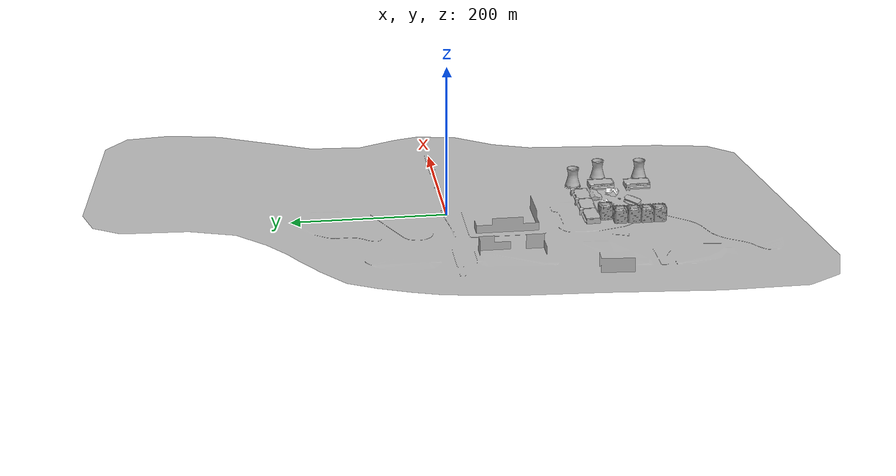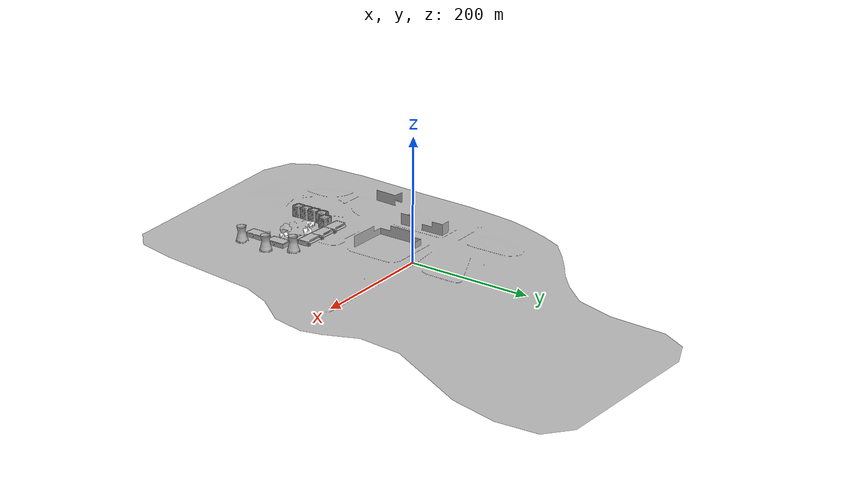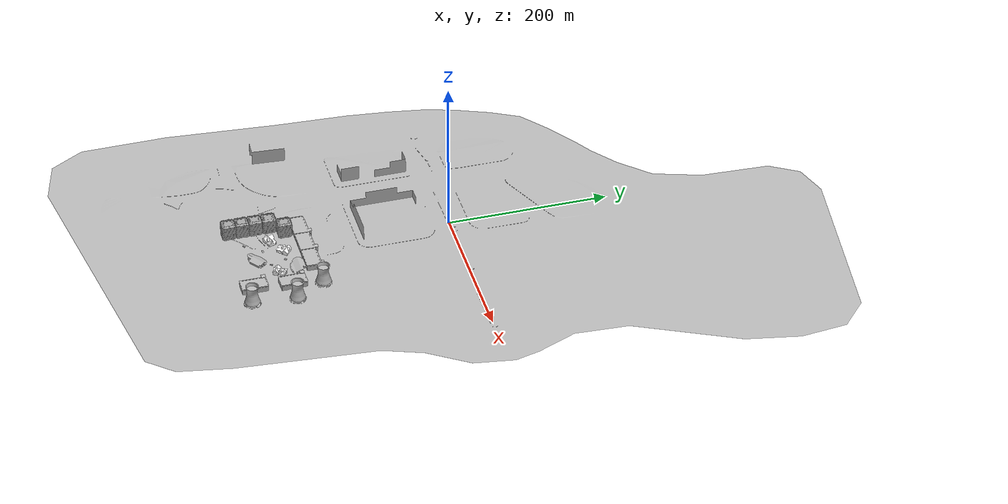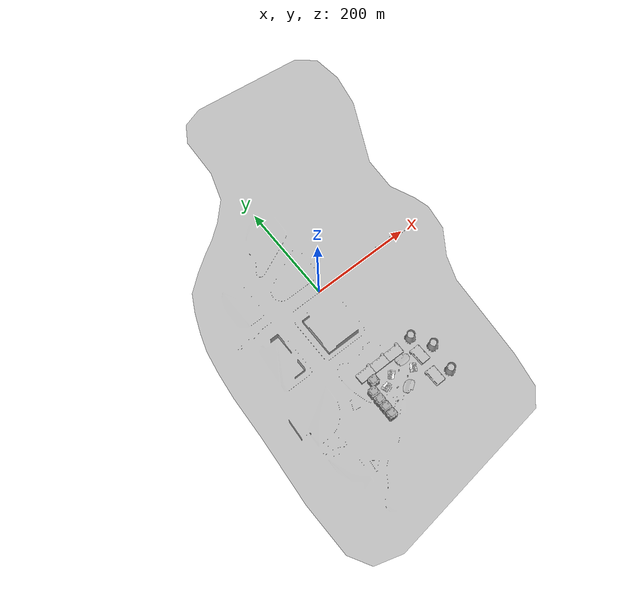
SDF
<sdf version="1.6">
 <world name="default">
  <light name="sun" type="directional">
   <pose>0 0 10 0 -0 0</pose>
   <diffuse>0.8 0.8 0.8 1</diffuse>
   <specular>0.2 0.2 0.2 1</specular>
   <attenuation>
    <range>1000</range>
    <constant>0.9</constant>
    <linear>0.01</linear>
    <quadratic>0.001</quadratic>
   </attenuation>
   <direction>-0.5 0.1 -0.9</direction>
  </light>
  <model name="cafe">
   <static>1</static>
   <link name="link">
    <collision name="collision">
     <geometry><mesh><scale>0.254 0.254 0.254</scale><uri>model://mcity/meshes/mcity.obj</uri></mesh></geometry>
    </collision>
    <visual name="visual">
     <geometry><mesh><scale>0.254 0.254 0.254</scale><uri>model://mcity/meshes/mcity.obj</uri></mesh></geometry>
    </visual>
   </link>
  </model>
  <gravity>0 0 -9.8</gravity>
  <magnetic_field>6e-06 2.3e-05 -4.2e-05</magnetic_field>
  <atmosphere type="adiabatic"/>
  <physics name="default_physics" default="0" type="ode">
   <max_step_size>0.001</max_step_size>
   <real_time_factor>1</real_time_factor>
   <real_time_update_rate>1000</real_time_update_rate>
  </physics>
  <scene><ambient>0.4 0.4 0.4 1</ambient><background>0.7 0.7 0.7 1</background><shadows>1</shadows></scene>
  <audio><device>default</device></audio>
  <spherical_coordinates>
   <surface_model>EARTH_WGS84</surface_model>
   <latitude_deg>0</latitude_deg>
   <longitude_deg>0</longitude_deg>
   <elevation>0</elevation>
   <heading_deg>0</heading_deg>
  </spherical_coordinates>
  <model name="cloverleaf_interchange">
   <static>1</static>
   <link name="link">
    <collision name="collision">
     <geometry>
      <mesh>
       <uri>model://cloverleaf_interchange/meshes/cloverleaf.obj</uri>
       <scale>0.0254 0.0254 0.0254</scale>
      </mesh>
     </geometry>
    </collision>
    <visual name="visual">
     <geometry>
      <mesh>
       <uri>model://cloverleaf_interchange/meshes/cloverleaf.obj</uri>
       <scale>0.0254 0.0254 0.0254</scale>
      </mesh>
     </geometry>
    </visual>
   </link>
   <pose>-295.324 348.572 0 0 -0 0</pose>
  </model>
  <model name="Speed limit">
   <static>1</static>
   <link name="link">
    <collision name="collision">
     <geometry>
      <mesh><scale>10 10 10</scale><uri>model://speed_limit_sign/meshes/speed_limit_sign.dae</uri></mesh>
     </geometry>
    </collision>
    <visual name="visual">
     <geometry>
      <mesh><scale>10 10 10</scale><uri>model://speed_limit_sign/meshes/speed_limit_sign.dae</uri></mesh>
     </geometry>
    </visual>
   </link>
   <pose>93.9624 -21.3385 0 0 -0 0</pose>
  </model>
  <model name="grocery_store_0">
   <static>1</static>
   <link name="link">
    <collision name="collision">
     <pose>0 0 4.04605 0 -0 0</pose>
     <geometry><box><size>32.1985 17.5425 8.09209</size></box></geometry>
    </collision>
    <visual name="visual">
     <pose>0 -1.96155 0 0 -0 0</pose>
     <geometry><mesh><uri>model://grocery_store/meshes/grocery_store.dae</uri></mesh></geometry>
    </visual>
   </link>
   <pose>30.0645 -180.827 0 0 -0 0</pose>
  </model>
  <model name="grocery_store_1">
   <static>1</static>
   <link name="link">
    <collision name="collision">
     <pose>0 0 4.04605 0 -0 0</pose>
     <geometry><box><size>32.1985 17.5425 8.09209</size></box></geometry>
    </collision>
    <visual name="visual">
     <pose>0 -1.96155 0 0 -0 0</pose>
     <geometry><mesh><uri>model://grocery_store/meshes/grocery_store.dae</uri></mesh></geometry>
    </visual>
   </link>
   <pose>-2.55986 -180.689 0 0 -0 0</pose>
  </model>
  <model name="grocery_store_2">
   <static>1</static>
   <link name="link">
    <collision name="collision">
     <pose>0 0 4.04605 0 -0 0</pose>
     <geometry><box><size>32.1985 17.5425 8.09209</size></box></geometry>
    </collision>
    <visual name="visual">
     <pose>0 -1.96155 0 0 -0 0</pose>
     <geometry><mesh><uri>model://grocery_store/meshes/grocery_store.dae</uri></mesh></geometry>
    </visual>
   </link>
   <pose>-34.944 -180.68 0 0 -0 0</pose>
  </model>
  <model name="House 1_1">
   <static>1</static>
   <link name="link">
    <collision name="collision">
     <geometry><mesh><uri>model://house_1/meshes/house_1.dae</uri><scale>1.5 1.5 1.5</scale></mesh></geometry>
    </collision>
    <visual name="visual">
     <geometry><mesh><uri>model://house_1/meshes/house_1.dae</uri><scale>1.5 1.5 1.5</scale></mesh></geometry>
     <material>
      <script>
       <uri>model://house_1/materials/scripts</uri>
       <uri>model://house_1/materials/textures</uri>
       <name>House_1/Diffuse</name>
      </script>
      <shader type="normal_map_tangent_space"><normal_map>House_1_Normal.png</normal_map></shader>
     </material>
    </visual>
   </link>
   <pose>1.53988 -208.055 0 0 -0 0.898374</pose>
  </model>
  <model name="osrf_first_office_0">
   <static>1</static>
   <link name="link">
    <collision name="collision">
     <geometry><mesh><uri>model://osrf_first_office/meshes/osrf_first_office.dae</uri></mesh></geometry>
    </collision>
    <visual name="visual">
     <geometry><mesh><uri>model://osrf_first_office/meshes/osrf_first_office.dae</uri></mesh></geometry>
    </visual>
   </link>
   <pose>36.9325 -196.807 0 0 -0 0</pose>
  </model>
  <model name="Office Building_0">
   <static>1</static>
   <link name="link">
    <collision name="collision">
     <geometry><mesh><uri>model://office_building/meshes/office_building.dae</uri></mesh></geometry>
    </collision>
    <visual name="visual">
     <geometry><mesh><uri>model://office_building/meshes/office_building.dae</uri></mesh></geometry>
    </visual>
   </link>
   <pose>-32.874 -199.252 0 0 -0 0</pose>
  </model>
  <model name="Office Building_1">
   <static>1</static>
   <link name="link">
    <collision name="collision">
     <geometry><mesh><uri>model://office_building/meshes/office_building.dae</uri></mesh></geometry>
    </collision>
    <visual name="visual">
     <geometry><mesh><uri>model://office_building/meshes/office_building.dae</uri></mesh></geometry>
    </visual>
   </link>
   <pose>-46.1615 -215.88 0 0 -0 0</pose>
  </model>
  <model name="Office Building_2">
   <static>1</static>
   <link name="link">
    <collision name="collision">
     <geometry><mesh><uri>model://office_building/meshes/office_building.dae</uri></mesh></geometry>
    </collision>
    <visual name="visual">
     <geometry><mesh><uri>model://office_building/meshes/office_building.dae</uri></mesh></geometry>
    </visual>
   </link>
   <pose>-46.4258 -233.062 0 0 -0 0</pose>
  </model>
  <model name="Office Building_3">
   <static>1</static>
   <link name="link">
    <collision name="collision">
     <geometry><mesh><uri>model://office_building/meshes/office_building.dae</uri></mesh></geometry>
    </collision>
    <visual name="visual">
     <geometry><mesh><uri>model://office_building/meshes/office_building.dae</uri></mesh></geometry>
    </visual>
   </link>
   <pose>-46.4016 -249.587 0 0 -0 0</pose>
  </model>
  <model name="hatchback_red_0">
   <static>1</static>
   <link name="link">
    <collision name="collision">
     <pose>0 0 0 0 -0 1.5708</pose>
     <geometry>
      <mesh><scale>0.0254 0.0254 0.0254</scale><uri>model://hatchback_red/meshes/hatchback.obj</uri></mesh>
     </geometry>
    </collision>
    <visual name="visual">
     <pose>0 0 0 0 -0 1.5708</pose>
     <geometry>
      <mesh><scale>0.0254 0.0254 0.0254</scale><uri>model://hatchback_red/meshes/hatchback.obj</uri></mesh>
     </geometry>
    </visual>
   </link>
   <pose>-4.35848 -233.096 0 0 -0 0</pose>
  </model>
  <model name="Office Building_4">
   <static>1</static>
   <link name="link">
    <collision name="collision">
     <geometry><mesh><uri>model://office_building/meshes/office_building.dae</uri></mesh></geometry>
    </collision>
    <visual name="visual">
     <geometry><mesh><uri>model://office_building/meshes/office_building.dae</uri></mesh></geometry>
    </visual>
   </link>
   <pose>-46.3482 -265.811 0 0 -0 0</pose>
  </model>
  <model name="House 1">
   <static>1</static>
   <link name="link">
    <collision name="collision">
     <geometry><mesh><uri>model://house_1/meshes/house_1.dae</uri><scale>1.5 1.5 1.5</scale></mesh></geometry>
    </collision>
    <visual name="visual">
     <geometry><mesh><uri>model://house_1/meshes/house_1.dae</uri><scale>1.5 1.5 1.5</scale></mesh></geometry>
     <material>
      <script>
       <uri>model://house_1/materials/scripts</uri>
       <uri>model://house_1/materials/textures</uri>
       <name>House_1/Diffuse</name>
      </script>
      <shader type="normal_map_tangent_space"><normal_map>House_1_Normal.png</normal_map></shader>
     </material>
    </visual>
   </link>
   <pose>41.2656 -222.603 0 0 0 -2.07934</pose>
  </model>
  <model name="House 1_0">
   <static>1</static>
   <link name="link">
    <collision name="collision">
     <geometry><mesh><uri>model://house_1/meshes/house_1.dae</uri><scale>1.5 1.5 1.5</scale></mesh></geometry>
    </collision>
    <visual name="visual">
     <geometry><mesh><uri>model://house_1/meshes/house_1.dae</uri><scale>1.5 1.5 1.5</scale></mesh></geometry>
     <material>
      <script>
       <uri>model://house_1/materials/scripts</uri>
       <uri>model://house_1/materials/textures</uri>
       <name>House_1/Diffuse</name>
      </script>
      <shader type="normal_map_tangent_space"><normal_map>House_1_Normal.png</normal_map></shader>
     </material>
    </visual>
   </link>
   <pose>-19.9854 -220.657 0 0 0 -2.81249</pose>
  </model>
  <model name="osrf_first_office">
   <static>1</static>
   <link name="link">
    <collision name="collision">
     <geometry><mesh><uri>model://osrf_first_office/meshes/osrf_first_office.dae</uri></mesh></geometry>
    </collision>
    <visual name="visual">
     <geometry><mesh><uri>model://osrf_first_office/meshes/osrf_first_office.dae</uri></mesh></geometry>
    </visual>
   </link>
   <pose>12.3122 -246.628 0 0 0 -2.52163</pose>
  </model>
  <model name="hatchback_red">
   <static>1</static>
   <link name="link">
    <collision name="collision">
     <pose>0 0 0 0 -0 1.5708</pose>
     <geometry>
      <mesh><scale>0.0254 0.0254 0.0254</scale><uri>model://hatchback_red/meshes/hatchback.obj</uri></mesh>
     </geometry>
    </collision>
    <visual name="visual">
     <pose>0 0 0 0 -0 1.5708</pose>
     <geometry>
      <mesh><scale>0.0254 0.0254 0.0254</scale><uri>model://hatchback_red/meshes/hatchback.obj</uri></mesh>
     </geometry>
    </visual>
   </link>
   <pose>23.8245 -228.605 0 0 0 -2.28553</pose>
  </model>
  <model name="hatchback_red_1">
   <static>1</static>
   <link name="link">
    <collision name="collision">
     <pose>0 0 0 0 -0 1.5708</pose>
     <geometry>
      <mesh><scale>0.0254 0.0254 0.0254</scale><uri>model://hatchback_red/meshes/hatchback.obj</uri></mesh>
     </geometry>
    </collision>
    <visual name="visual">
     <pose>0 0 0 0 -0 1.5708</pose>
     <geometry>
      <mesh><scale>0.0254 0.0254 0.0254</scale><uri>model://hatchback_red/meshes/hatchback.obj</uri></mesh>
     </geometry>
    </visual>
   </link>
   <pose>-19.9938 -252.948 0 0 -0 0.618858</pose>
  </model>
  <model name="hatchback_red_2">
   <static>1</static>
   <link name="link">
    <collision name="collision">
     <pose>0 0 0 0 -0 1.5708</pose>
     <geometry>
      <mesh><scale>0.0254 0.0254 0.0254</scale><uri>model://hatchback_red/meshes/hatchback.obj</uri></mesh>
     </geometry>
    </collision>
    <visual name="visual">
     <pose>0 0 0 0 -0 1.5708</pose>
     <geometry>
      <mesh><scale>0.0254 0.0254 0.0254</scale><uri>model://hatchback_red/meshes/hatchback.obj</uri></mesh>
     </geometry>
    </visual>
   </link>
   <pose>17.9364 -209.782 0 0 0 -2.19451</pose>
  </model>
  <model name="reactor">
   <static>1</static>
   <link name="link">
    <collision name="collision">
     <geometry><mesh><uri>model://reactor/meshes/reactor.dae</uri></mesh></geometry>
    </collision>
    <visual name="visual"><geometry><mesh><uri>model://reactor/meshes/reactor.dae</uri></mesh></geometry></visual>
   </link>
   <pose>73.1416 -176.068 0 0 -0 0</pose>
  </model>
  <model name="grocery_store">
   <static>1</static>
   <link name="link">
    <collision name="collision">
     <pose>0 0 4.04605 0 -0 0</pose>
     <geometry><box><size>32.1985 17.5425 8.09209</size></box></geometry>
    </collision>
    <visual name="visual">
     <pose>0 -1.96155 0 0 -0 0</pose>
     <geometry><mesh><uri>model://grocery_store/meshes/grocery_store.dae</uri></mesh></geometry>
    </visual>
   </link>
   <pose>66.6104 -212.334 0 0 -0 1.59188</pose>
  </model>
  <model name="grocery_store_3">
   <static>1</static>
   <link name="link">
    <collision name="collision">
     <pose>0 0 4.04605 0 -0 0</pose>
     <geometry><box><size>32.1985 17.5425 8.09209</size></box></geometry>
    </collision>
    <visual name="visual">
     <pose>0 -1.96155 0 0 -0 0</pose>
     <geometry><mesh><uri>model://grocery_store/meshes/grocery_store.dae</uri></mesh></geometry>
    </visual>
   </link>
   <pose>62.5096 -259.7 0 0 -0 1.57447</pose>
  </model>
  <model name="reactor_0">
   <static>1</static>
   <link name="link">
    <collision name="collision">
     <geometry><mesh><uri>model://reactor/meshes/reactor.dae</uri></mesh></geometry>
    </collision>
    <visual name="visual"><geometry><mesh><uri>model://reactor/meshes/reactor.dae</uri></mesh></geometry></visual>
   </link>
   <pose>95.287 -213.459 0 0 -0 0</pose>
  </model>
  <model name="reactor_1">
   <static>1</static>
   <link name="link">
    <collision name="collision">
     <geometry><mesh><uri>model://reactor/meshes/reactor.dae</uri></mesh></geometry>
    </collision>
    <visual name="visual"><geometry><mesh><uri>model://reactor/meshes/reactor.dae</uri></mesh></geometry></visual>
   </link>
   <pose>89.929 -268.165 0 0 -0 0</pose>
  </model>
 </world>
</sdf>
